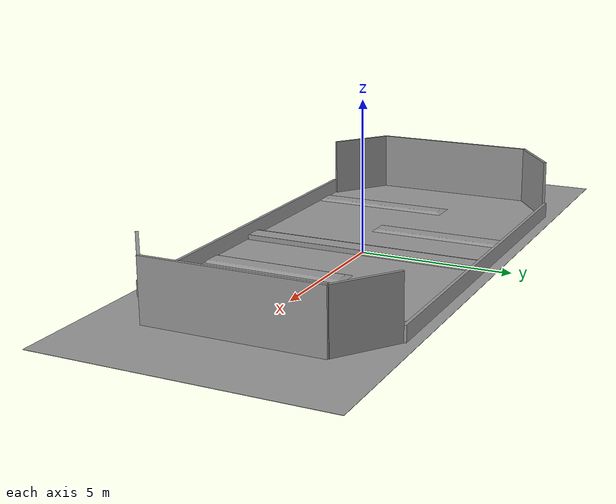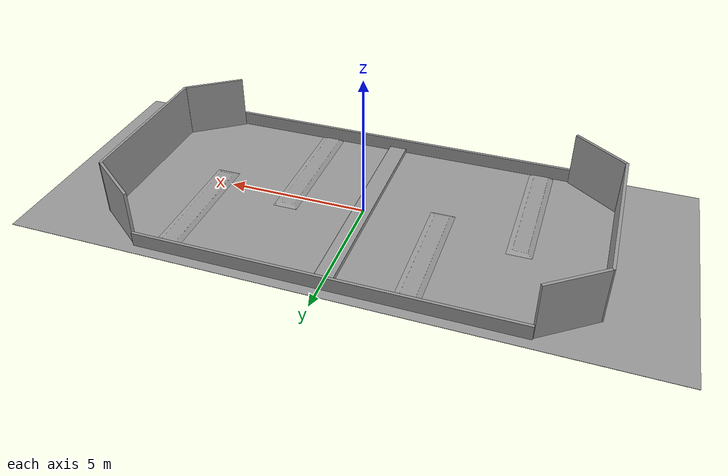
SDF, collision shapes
<?xml version="1.0" ?>
<sdf version="1.5">
  <model name="frc_field_2015">
    <static>true</static>
    <link name="link">

      <!-- Visual of the boundary walls -->
      <visual name="walls_visual">
        <pose>0 0 0 0 0 1.5707</pose>
        <geometry>
          <mesh>
            <uri>model://frc_field_2015/meshes/walls.dae</uri>
          </mesh>
        </geometry>
        <material>
          <script>
            <name>Gazebo/Grey</name>
          </script>
        </material>
      </visual>

      <!-- The red and blue floor -->
      <visual name="red_floor_visual">
        <pose>5.4865 0 -0.005 0 0 0</pose>
        <geometry>
          <box>
            <size>10.973 9.144 0.01</size>
          </box>
        </geometry>
        <material>
          <script>
            <name>Gazebo/Red</name>
          </script>
        </material>
      </visual>
      <visual name="blue_floor_visual">
        <pose>-5.4865 0 -0.005 0 0 0</pose>
        <geometry>
          <box>
            <size>10.973 9.144 0.01</size>
          </box>
        </geometry>
        <material>
          <script>
            <name>Gazebo/Blue</name>
          </script>
        </material>
      </visual>
      <collision name="floor_collision">
        <pose>0 0 -0.005 0 0 0</pose>
        <geometry>
          <box>
            <size>21.946 9.144 0.01</size>
          </box>
        </geometry>
        <surface>
          <friction>
            <ode>
              <mu>100.0</mu>
              <mu2>50</mu2>
            </ode>
          </friction>
        </surface>
      </collision>

      <!-- back walls for each side of the field -->
      <collision name="red_backwall_collision">
        <pose>8.26062 0 0.992 0 0 0</pose>
        <geometry>
          <box>
            <size>0.1 5.664 1.984</size>
          </box>
        </geometry>
      </collision>
      <collision name="blue_backwall_collision">
        <pose>-8.26062 0 0.992 0 0 0</pose>
        <geometry>
          <box>
            <size>0.1 5.664 1.984</size>
          </box>
        </geometry>
      </collision>

      <!-- Angled side walls for each side of the field -->
      <collision name="red_leftsidewall_collision">
        <pose>7.353426 3.463458 0.992 0 0 -0.635132</pose>
        <geometry>
          <box>
            <size>2.1844 0.1 1.984</size>
          </box>
        </geometry>
      </collision>
      <collision name="red_rightsidewall_collision">
        <pose>7.353426 -3.463458 0.992 0 0 0.635132</pose>
        <geometry>
          <box>
            <size>2.1844 0.1 1.984</size>
          </box>
        </geometry>
      </collision>

      <collision name="blue_leftsidewall_collision">
        <pose>-7.353426 3.463458 0.992 0 0 0.635132</pose>
        <geometry>
          <box>
            <size>2.1844 0.1 1.984</size>
          </box>
        </geometry>
      </collision>
      <collision name="blue_rightsidewall_collision">
        <pose>-7.353426 -3.463458 0.992 0 0 -0.635132</pose>
        <geometry>
          <box>
            <size>2.1844 0.1 1.984</size>
          </box>
        </geometry>
      </collision>

      <!-- Long left wall -->
      <collision name="left_wall_collision">
        <pose>0 4.167748 0.25 0 0 0</pose>
        <geometry>
          <box>
            <size>12.972 0.1 0.5</size>
          </box>
        </geometry>
      </collision>

      <!-- Long right wall -->
      <collision name="left_wall_collision">
        <pose>0 -4.167748 0.25 0 0 0</pose>
        <geometry>
          <box>
            <size>12.972 0.1 0.5</size>
          </box>
        </geometry>
      </collision>

      <!-- Middle barrier -->
      <visual name="middle_barrier_visual">
        <pose>0 0 0.080965 0 0 0</pose>
        <geometry>
          <box>
            <size>0.62228 8.179 0.16193</size>
          </box>
        </geometry>
      </visual>
      <collision name="middle_barrier_collision">
        <pose>0 0 0.080965 0 0 0</pose>
        <geometry>
          <box>
            <size>0.62228 8.179 0.16193</size>
          </box>
        </geometry>
      </collision>

      <visual name="red_middle_barrier_visual">
        <pose>0.314315 0 0.08573 0 0 0</pose>
        <geometry>
          <box>
            <size>0.00635 8.179 0.17146</size>
          </box>
        </geometry>
        <material>
          <script>
            <name>Gazebo/Red</name>
          </script>
        </material>
      </visual>
      <collision name="red_middle_barrier_collision">
        <pose>0.314315 0 0.08573 0 0 0</pose>
        <geometry>
          <box>
            <size>0.00635 8.179 0.17146</size>
          </box>
        </geometry>
      </collision>

      <visual name="blue_middle_barrier_visual">
        <pose>-0.314315 0 0.08573 0 0 0</pose>
        <geometry>
          <box>
            <size>0.00635 8.179 0.17146</size>
          </box>
        </geometry>
        <material>
          <script>
            <name>Gazebo/Blue</name>
          </script>
        </material>
      </visual>
      <collision name="blue_middle_barrier_collision">
        <pose>-0.314315 0 0.08573 0 0 0</pose>
        <geometry>
          <box>
            <size>0.00635 8.179 0.17146</size>
          </box>
        </geometry>
      </collision>

      <visual name="ramps_visual">
        <pose>0 0 0 0 0 1.5707</pose>
        <geometry>
          <mesh>
            <uri>model://frc_field_2015/meshes/ramps.dae</uri>
          </mesh>
        </geometry>
        <material>
          <script>
            <name>Gazebo/Grey</name>
          </script>
        </material>
      </visual>
      <collision name="ramps_barrier_collision">
        <pose>0 0 0 0 0 1.5707</pose>
        <geometry>
          <mesh>
            <uri>model://frc_field_2015/meshes/ramps.dae</uri>
          </mesh>
        </geometry>
      </collision>

    </link>
  </model>
</sdf>
